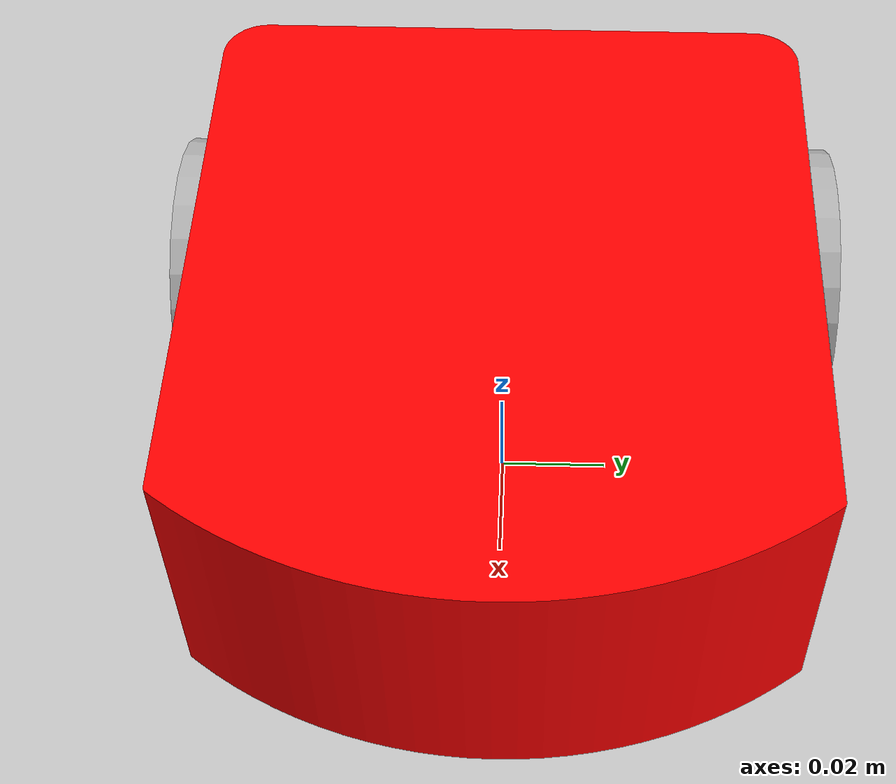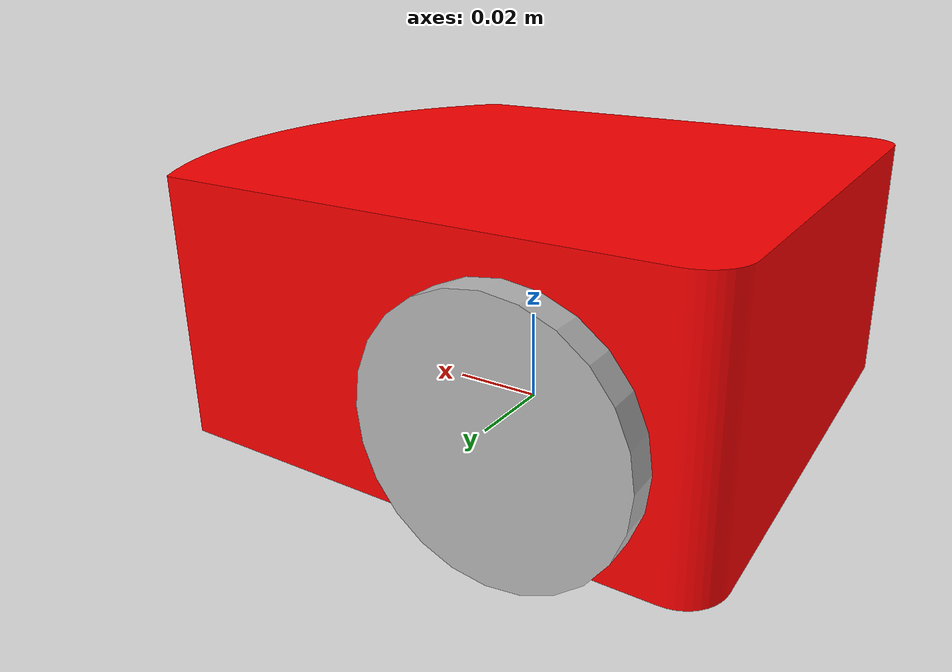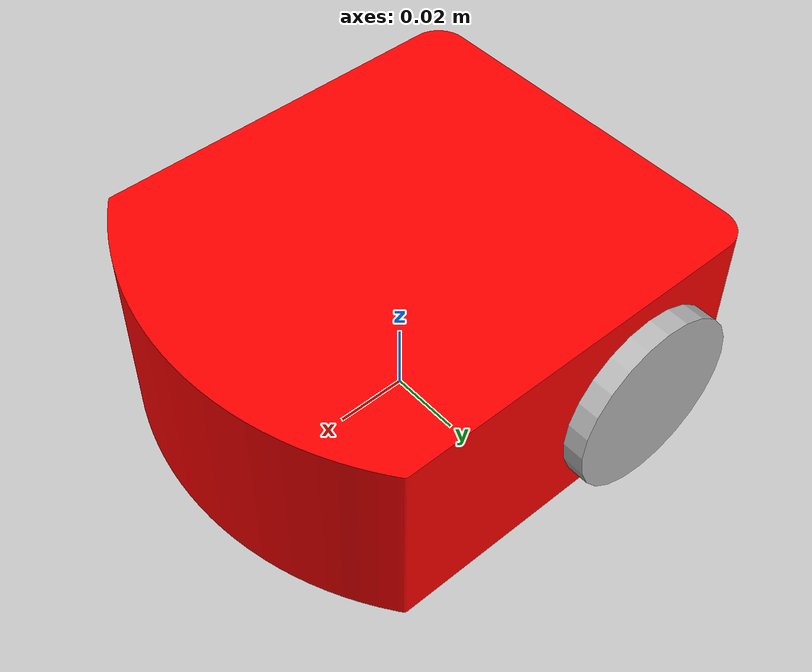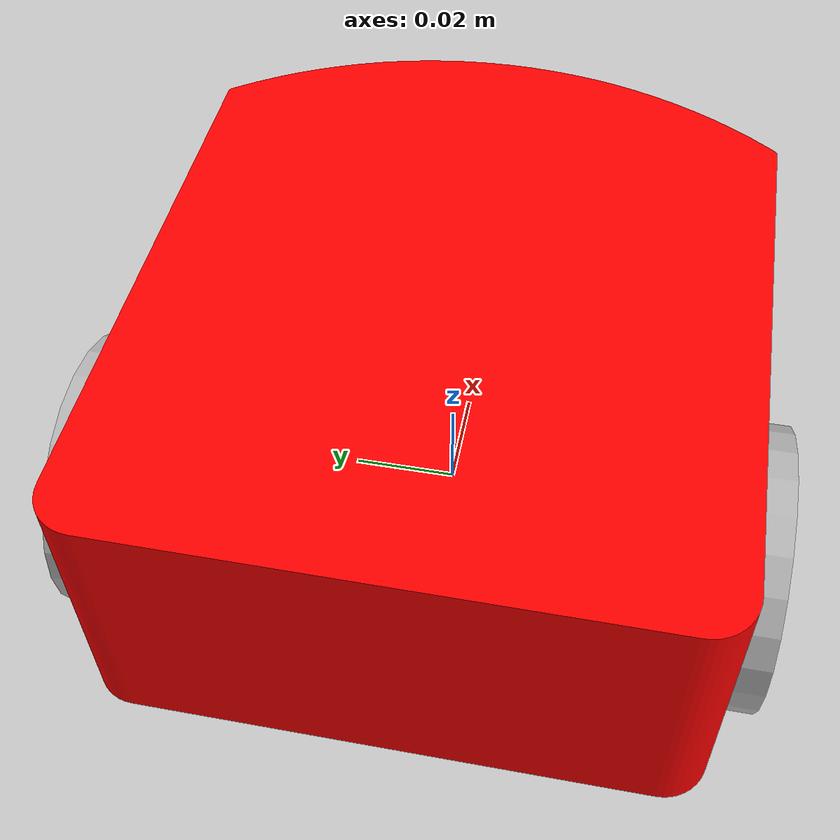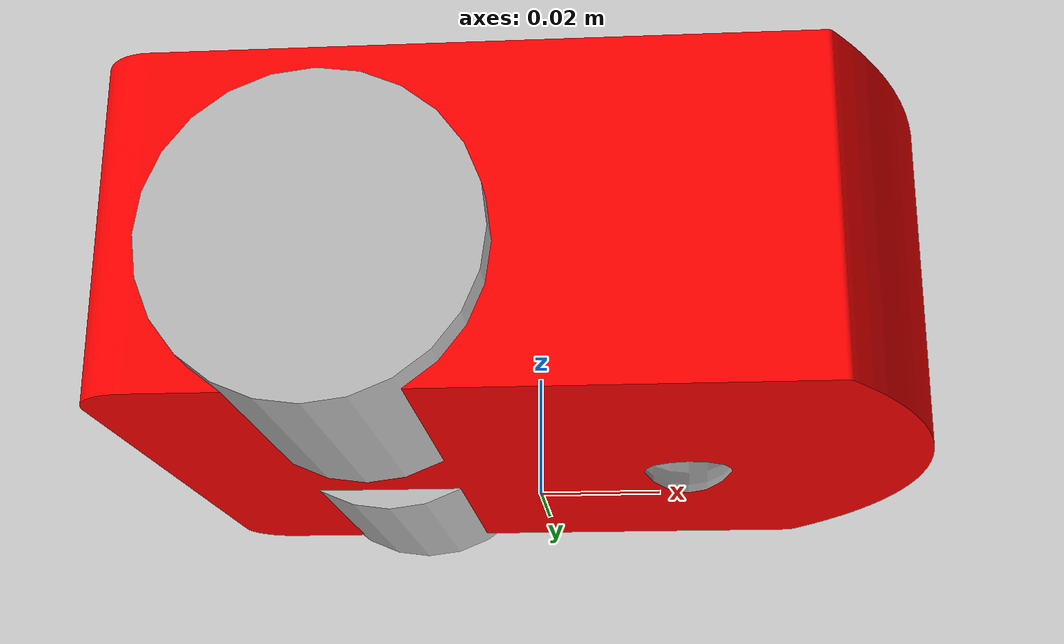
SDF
<?xml version='1.0'?>
<sdf version='1.4'>
<model name="thymio_predator">
    <link name='body'>
        <pose>-0.025 0 0.030 1.570796 0 1.570796</pose>
        <true>false</true>
        <inertial>
          <inertia>
            <ixx>0.00024333333</ixx>
            <ixy>0</ixy>
            <ixz>0</ixz>
            <iyy>0.00024333333</iyy>
            <iyz>0</iyz>
            <izz>0.00041073333</izz>
          </inertia>
          <mass>0.2</mass>
        </inertial>
        <collision name='collision_body'>
            <geometry>
                <mesh><uri>file:///home/jaqq/.gazebo/models/thymio_predator/thymio.obj</uri></mesh>
            </geometry>
        </collision>
        <visual name='visual_body'>
            <geometry>
                <mesh><uri>file:///home/jaqq/.gazebo/models/thymio_predator/thymio.obj</uri></mesh>
            </geometry>

            <material>
            <ambient>1 0 0 1</ambient>
            <diffuse>1 0 0 1</diffuse>
            <specular>0.1 1.0 0.1 1</specular>
            <emissive>0 0 0 0</emissive>
            </material>

        </visual>

        <collision name='collision_ball'>
            <pose>0.0 -0.02 0.05 0 0 0</pose>
            <geometry>
                <sphere>
                    <radius>.01</radius>
                </sphere>
            </geometry>
            <surface>
                <friction>
                    <ode>
                        <mu>0</mu>
                        <mu2>0</mu2>
                        <slip1>1.0</slip1>
                        <slip2>1.0</slip2>
                    </ode>
                </friction>
            </surface>
        </collision>
        <visual name='visual_ball'>
           <pose>0.0 -0.02 0.05 0 0 0</pose>
            <geometry>
                <sphere>
                    <radius>.01</radius>
                </sphere>
            </geometry>
        </visual>

    </link>

    <link name="left_wheel">
    <pose>-0.028 0.036 0.025 0 1.5707 1.5707</pose>
    <inertial>
      <inertia>
        <ixx>0.00000546875</ixx>
        <ixy>0</ixy>
        <ixz>0</ixz>
        <iyy>0.00000546875</iyy>
        <iyz>0</iyz>
        <izz>0.0000109375</izz>
      </inertia>
      <mass>0.035</mass>
    </inertial>
    <collision name="collision">
        <geometry>
            <cylinder>
                <radius>.025</radius>
                <length>.05</length>
            </cylinder>
        </geometry>
    </collision>
    <visual name="visual">
        <geometry>
            <cylinder>
                <radius>.025</radius>
                <length>.05</length>
            </cylinder>
        </geometry>
    </visual>
    </link>

    <joint type="revolute" name="left_wheel_hinge">
        <pose>0 0 0 0 0 0</pose>
        <child>left_wheel</child>
        <parent>body</parent>
        <axis>
            <xyz>0 1 0</xyz>
        </axis>
    </joint>

    <link name="right_wheel">
    <pose>-0.028 -0.036 0.025 0 1.5707 1.5707</pose>
    <inertial>
      <inertia>
        <ixx>0.00000546875</ixx>
        <ixy>0</ixy>
        <ixz>0</ixz>
        <iyy>0.00000546875</iyy>
        <iyz>0</iyz>
        <izz>0.0000109375</izz>
      </inertia>
      <mass>0.035</mass>
    </inertial>
    <collision name="collision">
        <geometry>
            <cylinder>
                <radius>.025</radius>
                <length>.05</length>
            </cylinder>
        </geometry>
    </collision>
    <visual name="visual">
        <geometry>
            <cylinder>
                <radius>.025</radius>
                <length>.05</length>
            </cylinder>
        </geometry>
    </visual>
    </link>

    <joint type="revolute" name="right_wheel_hinge">
        <pose>0 0 0 0 0 0</pose>
        <child>right_wheel</child>
        <parent>body</parent>
        <axis>
            <xyz>0 1 0</xyz>
        </axis>
    </joint>

</model>
</sdf>
